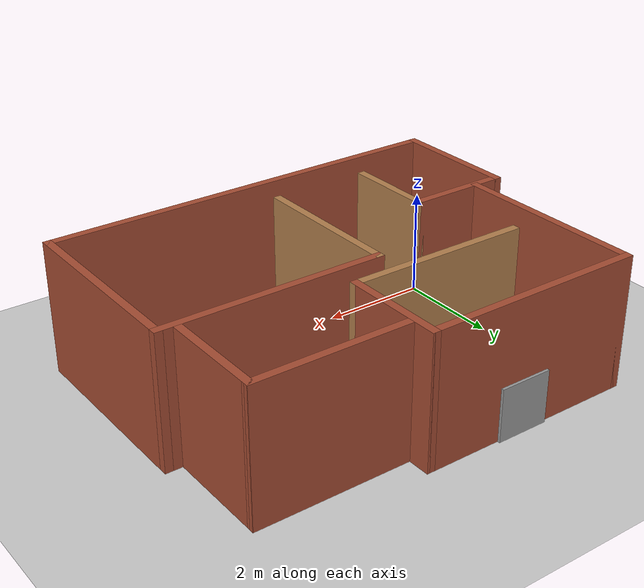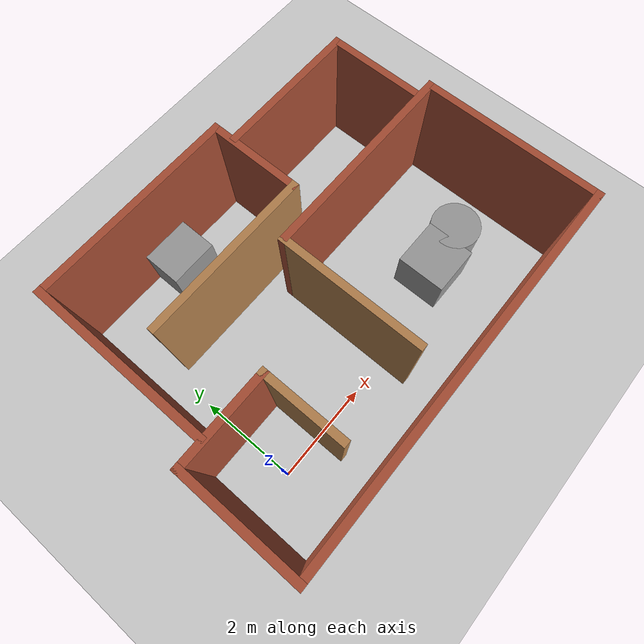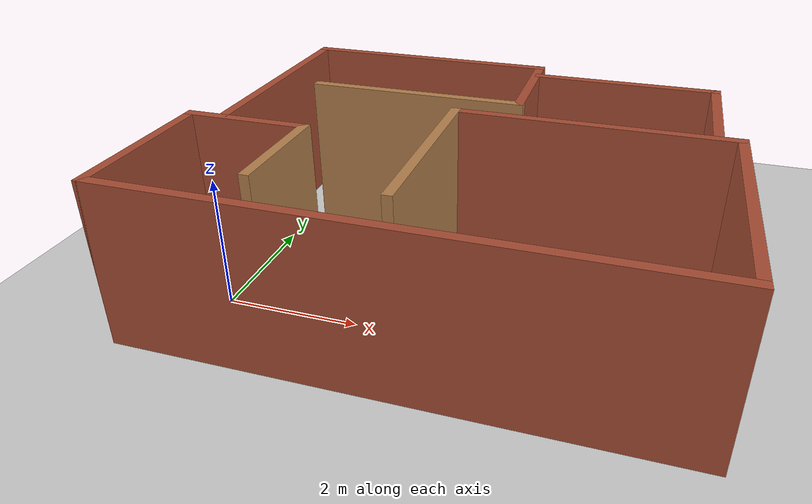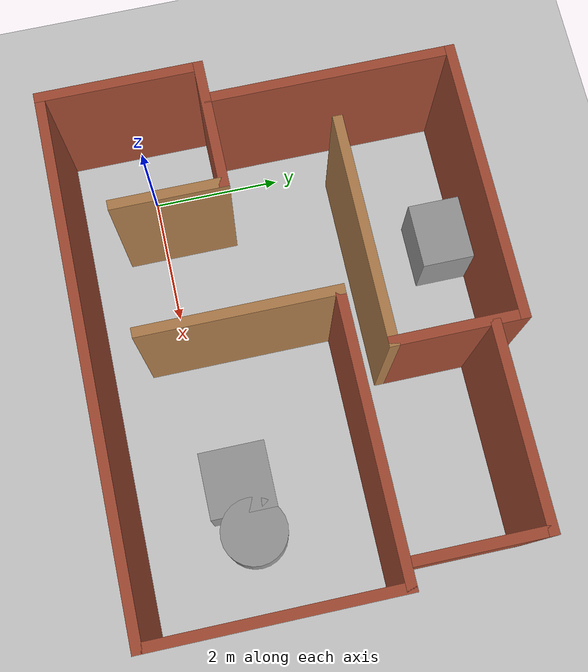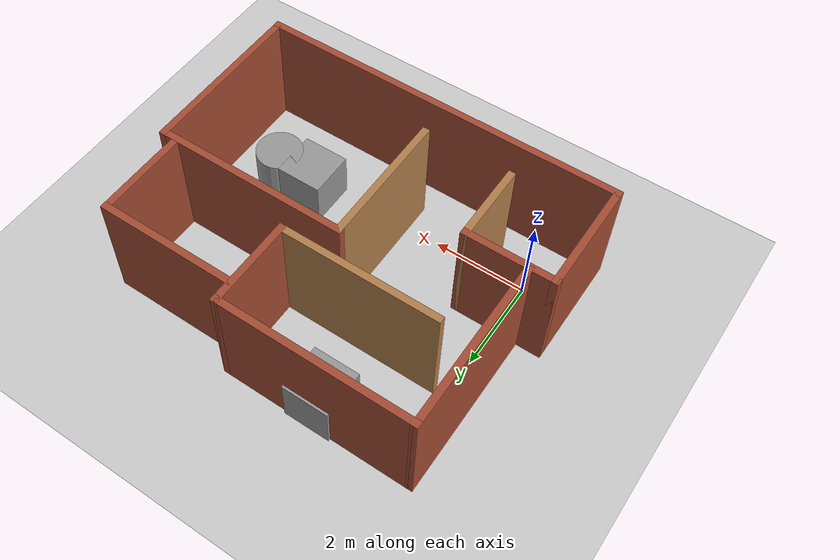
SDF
<sdf version="1.6">
 <world name="default">
  <light name="sun" type="directional">
   <pose>0 0 10 0 -0 0</pose>
   <diffuse>0.8 0.8 0.8 1</diffuse>
   <specular>0.2 0.2 0.2 1</specular>
   <attenuation>
    <range>1000</range>
    <constant>0.9</constant>
    <linear>0.01</linear>
    <quadratic>0.001</quadratic>
   </attenuation>
   <direction>-0.5 0.1 -0.9</direction>
  </light>
  <model name="ground_plane">
   <static>1</static>
   <link name="link">
    <collision name="collision">
     <geometry><plane><normal>0 0 1</normal><size>100 100</size></plane></geometry>
     <surface>
      <contact><collide_bitmask>65535</collide_bitmask></contact>
      <friction><ode><mu>100</mu><mu2>50</mu2></ode></friction>
     </surface>
    </collision>
    <visual name="visual">
     <cast_shadows>0</cast_shadows>
     <geometry><plane><normal>0 0 1</normal><size>100 100</size></plane></geometry>
     <material>
      <script><uri>file://media/materials/scripts/gazebo.material</uri><name>Gazebo/Grey</name></script>
     </material>
    </visual>
   </link>
  </model>
  <gravity>0 0 -9.8</gravity>
  <magnetic_field>6e-06 2.3e-05 -4.2e-05</magnetic_field>
  <atmosphere type="adiabatic"/>
  <physics name="default_physics" default="0" type="ode">
   <max_step_size>0.001</max_step_size>
   <real_time_factor>1</real_time_factor>
   <real_time_update_rate>1000</real_time_update_rate>
  </physics>
  <scene><ambient>0.4 0.4 0.4 1</ambient><background>0.7 0.7 0.7 1</background><shadows>1</shadows></scene>
  <audio><device>default</device></audio>
  <spherical_coordinates>
   <surface_model>EARTH_WGS84</surface_model>
   <latitude_deg>0</latitude_deg>
   <longitude_deg>0</longitude_deg>
   <elevation>0</elevation>
   <heading_deg>0</heading_deg>
  </spherical_coordinates>
  <model name="Room1">
   <pose>2.96311 1.72871 0 0 -0 0</pose>
   <link name="Wall_0">
    <collision name="Wall_0_Collision">
     <geometry><box><size>2.5 0.15 2.5</size></box></geometry>
     <pose>0 0 1.25 0 -0 0</pose>
    </collision>
    <visual name="Wall_0_Visual">
     <pose>0 0 1.25 0 -0 0</pose>
     <geometry><box><size>2.5 0.15 2.5</size></box></geometry>
     <material>
      <script><uri>file://media/materials/scripts/gazebo.material</uri><name>Gazebo/Bricks</name></script>
      <ambient>1 1 1 1</ambient>
     </material>
     <meta><layer>0</layer></meta>
    </visual>
    <pose>-3.925 -1.825 0 0 -0 -1.5708</pose>
   </link>
   <link name="Wall_1">
    <collision name="Wall_1_Collision">
     <geometry><box><size>8 0.15 2.5</size></box></geometry>
     <pose>0 0 1.25 0 -0 0</pose>
    </collision>
    <visual name="Wall_1_Visual">
     <pose>0 0 1.25 0 -0 0</pose>
     <geometry><box><size>8 0.15 2.5</size></box></geometry>
     <material>
      <script><uri>file://media/materials/scripts/gazebo.material</uri><name>Gazebo/Bricks</name></script>
      <ambient>1 1 1 1</ambient>
     </material>
     <meta><layer>0</layer></meta>
    </visual>
    <pose>-0 -3 0 0 -0 0</pose>
   </link>
   <link name="Wall_10">
    <collision name="Wall_10_Collision">
     <geometry><box><size>2 0.15 2.5</size></box></geometry>
     <pose>0 0 1.25 0 -0 0</pose>
    </collision>
    <visual name="Wall_10_Visual">
     <pose>0 0 1.25 0 -0 0</pose>
     <geometry><box><size>2 0.15 2.5</size></box></geometry>
     <material>
      <script><uri>file://media/materials/scripts/gazebo.material</uri><name>Gazebo/Bricks</name></script>
      <ambient>1 1 1 1</ambient>
     </material>
     <meta><layer>0</layer></meta>
    </visual>
    <pose>0.695 2.075 0 0 -0 -1.5708</pose>
   </link>
   <link name="Wall_11">
    <collision name="Wall_11_Collision">
     <geometry><box><size>3.5 0.15 2.5</size></box></geometry>
     <pose>0 0 1.25 0 -0 0</pose>
    </collision>
    <visual name="Wall_11_Visual">
     <pose>0 0 1.25 0 -0 0</pose>
     <geometry><box><size>3.5 0.15 2.5</size></box></geometry>
     <material>
      <script><uri>file://media/materials/scripts/gazebo.material</uri><name>Gazebo/Wood</name></script>
      <ambient>1 1 1 1</ambient>
     </material>
     <meta><layer>0</layer></meta>
    </visual>
    <pose>-0.98 1.15 0 0 -0 3.14159</pose>
   </link>
   <link name="Wall_13">
    <collision name="Wall_13_Collision">
     <geometry><box><size>3 0.15 2.5</size></box></geometry>
     <pose>0 0 1.25 0 -0 0</pose>
    </collision>
    <visual name="Wall_13_Visual">
     <pose>0 0 1.25 0 -0 0</pose>
     <geometry><box><size>3 0.15 2.5</size></box></geometry>
     <material>
      <script><uri>file://media/materials/scripts/gazebo.material</uri><name>Gazebo/Bricks</name></script>
      <ambient>1 1 1 1</ambient>
     </material>
     <meta><layer>0</layer></meta>
    </visual>
    <pose>2.18506 2.57948 0 0 -0 0</pose>
   </link>
   <link name="Wall_14">
    <collision name="Wall_14_Collision">
     <geometry><box><size>1.96704 0.15 2.5</size></box></geometry>
     <pose>0 0 1.25 0 -0 0</pose>
    </collision>
    <visual name="Wall_14_Visual">
     <pose>0 0 1.25 0 -0 0</pose>
     <geometry><box><size>1.96704 0.15 2.5</size></box></geometry>
     <material>
      <script><uri>file://media/materials/scripts/gazebo.material</uri><name>Gazebo/Bricks</name></script>
      <ambient>1 1 1 1</ambient>
     </material>
     <meta><layer>0</layer></meta>
    </visual>
    <pose>3.6088 1.65575 0 0 -0 -1.57218</pose>
   </link>
   <link name="Wall_17">
    <collision name="Wall_17_Collision">
     <geometry><box><size>3 0.15 2.5</size></box></geometry>
     <pose>0 0 1.25 0 -0 0</pose>
    </collision>
    <visual name="Wall_17_Visual">
     <pose>0 0 1.25 0 -0 0</pose>
     <geometry><box><size>3 0.15 2.5</size></box></geometry>
     <material>
      <script><uri>file://media/materials/scripts/gazebo.material</uri><name>Gazebo/Wood</name></script>
      <ambient>1 1 1 1</ambient>
     </material>
     <meta><layer>0</layer></meta>
    </visual>
    <pose>-0.175 -0.825 0 0 -0 -1.5708</pose>
   </link>
   <link name="Wall_2">
    <collision name="Wall_2_Collision">
     <geometry><box><size>3.75 0.15 2.5</size></box></geometry>
     <pose>0 0 1.25 0 -0 0</pose>
    </collision>
    <visual name="Wall_2_Visual">
     <pose>0 0 1.25 0 -0 0</pose>
     <geometry><box><size>3.75 0.15 2.5</size></box></geometry>
     <material>
      <script><uri>file://media/materials/scripts/gazebo.material</uri><name>Gazebo/Bricks</name></script>
      <ambient>1 1 1 1</ambient>
     </material>
     <meta><layer>0</layer></meta>
    </visual>
    <pose>3.925 -1.2 0 0 -0 1.5708</pose>
   </link>
   <link name="Wall_3">
    <collision name="Wall_3_Collision">
     <geometry><box><size>4.25 0.15 2.5</size></box></geometry>
     <pose>0 0 1.25 0 -0 0</pose>
    </collision>
    <visual name="Wall_3_Visual">
     <pose>0 0 1.25 0 -0 0</pose>
     <geometry><box><size>4.25 0.15 2.5</size></box></geometry>
     <material>
      <script><uri>file://media/materials/scripts/gazebo.material</uri><name>Gazebo/Bricks</name></script>
      <ambient>1 1 1 1</ambient>
     </material>
     <meta><layer>0</layer></meta>
    </visual>
    <pose>1.875 0.6 0 0 -0 3.14159</pose>
   </link>
   <link name="Wall_5">
    <collision name="Wall_5_Collision">
     <geometry><box><size>2 0.15 2.5</size></box></geometry>
     <pose>0 0 1.25 0 -0 0</pose>
    </collision>
    <visual name="Wall_5_Visual">
     <pose>0 0 1.25 0 -0 0</pose>
     <geometry><box><size>2 0.15 2.5</size></box></geometry>
     <material>
      <script><uri>file://media/materials/scripts/gazebo.material</uri><name>Gazebo/Bricks</name></script>
      <ambient>1 1 1 1</ambient>
     </material>
     <meta><layer>0</layer></meta>
    </visual>
    <pose>-3 -0.65 0 0 -0 0</pose>
   </link>
   <link name="Wall_6">
    <collision name="Wall_6_Collision">
     <geometry><box><size>1.75 0.15 2.5</size></box></geometry>
     <pose>0 0 1.25 0 -0 0</pose>
    </collision>
    <visual name="Wall_6_Visual">
     <pose>0 0 1.25 0 -0 0</pose>
     <geometry><box><size>1.75 0.15 2.5</size></box></geometry>
     <material>
      <script><uri>file://media/materials/scripts/gazebo.material</uri><name>Gazebo/Wood</name></script>
      <ambient>1 1 1 1</ambient>
     </material>
     <meta><layer>0</layer></meta>
    </visual>
    <pose>-2.075 -1.45 0 0 -0 -1.5708</pose>
   </link>
   <link name="Wall_8">
    <collision name="Wall_8_Collision">
     <geometry><box><size>3.75 0.15 2.5</size></box></geometry>
     <pose>0 0 1.25 0 -0 0</pose>
    </collision>
    <visual name="Wall_8_Visual">
     <pose>0 0 1.25 0 -0 0</pose>
     <geometry><box><size>3.75 0.15 2.5</size></box></geometry>
     <material>
      <script><uri>file://media/materials/scripts/gazebo.material</uri><name>Gazebo/Bricks</name></script>
      <ambient>1 1 1 1</ambient>
     </material>
     <meta><layer>0</layer></meta>
    </visual>
    <pose>-3.405 1.2 0 0 -0 1.5708</pose>
   </link>
   <link name="Wall_9">
    <collision name="Wall_9_Collision">
     <geometry><box><size>4.25 0.15 2.5</size></box></geometry>
     <pose>0 0 1.25 0 -0 0</pose>
    </collision>
    <visual name="Wall_9_Visual">
     <pose>0 0 1.25 0 -0 0</pose>
     <geometry><box><size>4.25 0.15 2.5</size></box></geometry>
     <material>
      <script><uri>file://media/materials/scripts/gazebo.material</uri><name>Gazebo/Bricks</name></script>
      <ambient>1 1 1 1</ambient>
     </material>
     <meta><layer>0</layer></meta>
    </visual>
    <pose>-1.355 3 0 0 -0 0</pose>
   </link>
   <static>1</static>
  </model>
  <model name="unit_box">
   <pose>1.76381 4.35298 0.499938 0 -5e-05 8.1e-05</pose>
   <link name="link">
    <inertial>
     <mass>1</mass>
     <inertia>
      <ixx>0.166667</ixx>
      <ixy>0</ixy>
      <ixz>0</ixz>
      <iyy>0.166667</iyy>
      <iyz>0</iyz>
      <izz>0.166667</izz>
     </inertia>
    </inertial>
    <collision name="collision"><geometry><box><size>1 0.999997 1</size></box></geometry></collision>
    <visual name="visual">
     <geometry><box><size>1 0.999997 1</size></box></geometry>
     <material>
      <script><name>Gazebo/Grey</name><uri>file://media/materials/scripts/gazebo.material</uri></script>
     </material>
    </visual>
   </link>
  </model>
  <model name="unit_cylinder">
   <pose>5.64566 0.478728 0.499994 -3e-06 3e-06 0</pose>
   <link name="link">
    <inertial>
     <mass>1</mass>
     <inertia><ixx>0.145833</ixx><ixy>0</ixy><ixz>0</ixz><iyy>0.145833</iyy><iyz>0</iyz><izz>0.125</izz></inertia>
    </inertial>
    <collision name="collision">
     <geometry><cylinder><radius>0.500001</radius><length>1</length></cylinder></geometry>
    </collision>
    <visual name="visual">
     <geometry><cylinder><radius>0.500001</radius><length>1</length></cylinder></geometry>
     <material>
      <script><name>Gazebo/Grey</name><uri>file://media/materials/scripts/gazebo.material</uri></script>
     </material>
    </visual>
   </link>
  </model>
  <model name="unit_box_0">
   <pose>4.86318 0.392505 0.499995 3e-06 1e-06 -6e-06</pose>
   <link name="link">
    <inertial>
     <mass>1</mass>
     <inertia>
      <ixx>0.166667</ixx>
      <ixy>0</ixy>
      <ixz>0</ixz>
      <iyy>0.166667</iyy>
      <iyz>0</iyz>
      <izz>0.166667</izz>
     </inertia>
    </inertial>
    <collision name="collision"><geometry><box><size>1 0.999992 1</size></box></geometry></collision>
    <visual name="visual">
     <geometry><box><size>1 0.999992 1</size></box></geometry>
     <material>
      <script><name>Gazebo/Grey</name><uri>file://media/materials/scripts/gazebo.material</uri></script>
     </material>
    </visual>
   </link>
  </model>
 </world>
</sdf>
